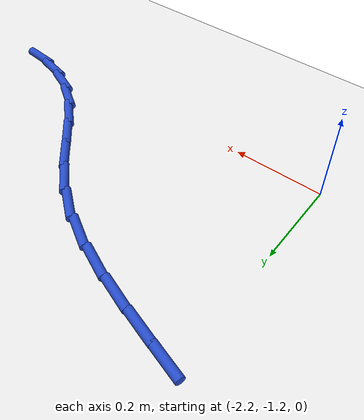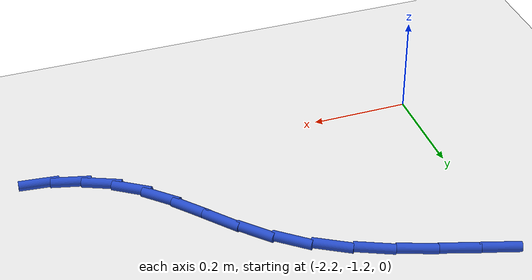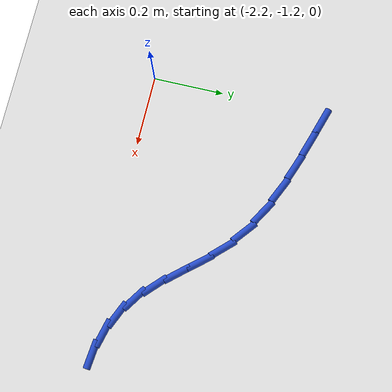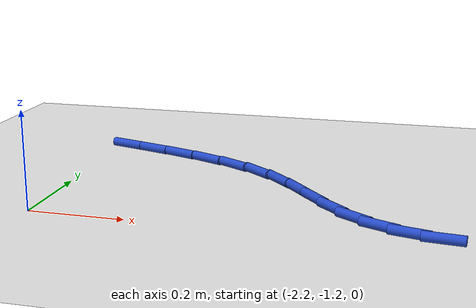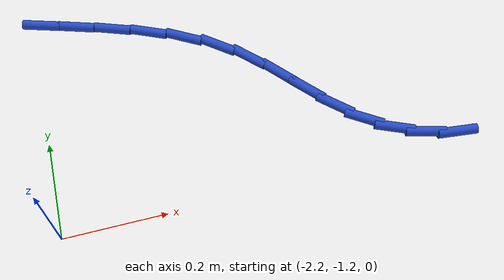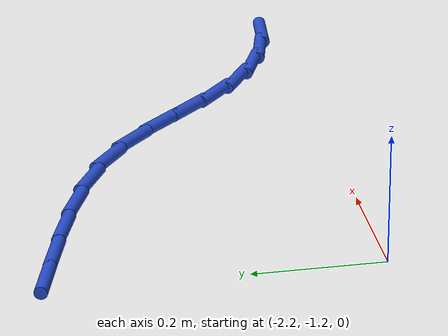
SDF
<sdf version="1.6">
 <world name="default">
  <model name="ground_plane">
   <static>1</static>
   <link name="link">
    <collision name="collision">
     <geometry><plane><normal>0 0 1</normal><size>100 100</size></plane></geometry>
     <surface><friction><ode><mu>100</mu><mu2>50</mu2></ode></friction></surface>
    </collision>
    <visual name="visual">
     <cast_shadows>0</cast_shadows>
     <geometry><plane><normal>0 0 1</normal><size>100 100</size></plane></geometry>
     <material>
      <script><uri>file://media/materials/scripts/gazebo.material</uri><name>Gazebo/WhiteGlow</name></script>
     </material>
    </visual>
   </link>
  </model>
  <model name="line">
   <link name="link_69">
    <pose>-2.179957475120213 -0.7105282454175981 0.01 0 1.57 -0.29930819599066694</pose>
    <collision name="collision">
     <geometry><cylinder><radius>0.01</radius><length>0.08</length></cylinder></geometry>
    </collision>
    <visual name="visual">
     <material>
      <script><name>Gazebo/Blue</name><uri>file://media/materials/scripts/gazebo.material</uri></script>
     </material>
     <geometry><cylinder><radius>0.01</radius><length>0.08</length></cylinder></geometry>
    </visual>
   </link>
   <link name="link_70">
    <pose>-2.107617988413143 -0.7328506491828713 0.01 0 1.57 -0.31119644504675537</pose>
    <collision name="collision">
     <geometry><cylinder><radius>0.01</radius><length>0.08</length></cylinder></geometry>
    </collision>
    <visual name="visual">
     <material>
      <script><name>Gazebo/Blue</name><uri>file://media/materials/scripts/gazebo.material</uri></script>
     </material>
     <geometry><cylinder><radius>0.01</radius><length>0.08</length></cylinder></geometry>
    </visual>
   </link>
   <link name="link_71">
    <pose>-2.033045088993491 -0.7568368152237275 0.01 0 1.57 -0.35165283028354094</pose>
    <collision name="collision">
     <geometry><cylinder><radius>0.01</radius><length>0.08</length></cylinder></geometry>
    </collision>
    <visual name="visual">
     <material>
      <script><name>Gazebo/Blue</name><uri>file://media/materials/scripts/gazebo.material</uri></script>
     </material>
     <geometry><cylinder><radius>0.01</radius><length>0.08</length></cylinder></geometry>
    </visual>
   </link>
   <link name="link_72">
    <pose>-1.958905544423885 -0.7840388135821549 0.01 0 1.57 -0.4228792199599753</pose>
    <collision name="collision">
     <geometry><cylinder><radius>0.01</radius><length>0.08</length></cylinder></geometry>
    </collision>
    <visual name="visual">
     <material>
      <script><name>Gazebo/Blue</name><uri>file://media/materials/scripts/gazebo.material</uri></script>
     </material>
     <geometry><cylinder><radius>0.01</radius><length>0.08</length></cylinder></geometry>
    </visual>
   </link>
   <link name="link_73">
    <pose>-1.8878661222669602 -0.8160087143001408 0.01 0 1.57 -0.5305197525894494</pose>
    <collision name="collision">
     <geometry><cylinder><radius>0.01</radius><length>0.08</length></cylinder></geometry>
    </collision>
    <visual name="visual">
     <material>
      <script><name>Gazebo/Blue</name><uri>file://media/materials/scripts/gazebo.material</uri></script>
     </material>
     <geometry><cylinder><radius>0.01</radius><length>0.08</length></cylinder></geometry>
    </visual>
   </link>
   <link name="link_74">
    <pose>-1.8225935900853476 -0.8542985874196733 0.01 0 1.57 -0.6772283078715434</pose>
    <collision name="collision">
     <geometry><cylinder><radius>0.01</radius><length>0.08</length></cylinder></geometry>
    </collision>
    <visual name="visual">
     <material>
      <script><name>Gazebo/Blue</name><uri>file://media/materials/scripts/gazebo.material</uri></script>
     </material>
     <geometry><cylinder><radius>0.01</radius><length>0.08</length></cylinder></geometry>
    </visual>
   </link>
   <link name="link_75">
    <pose>-1.7654963230384526 -0.9002097816610752 0.01 0 1.57 -0.803649046675729</pose>
    <collision name="collision">
     <geometry><cylinder><radius>0.01</radius><length>0.08</length></cylinder></geometry>
    </collision>
    <visual name="visual">
     <material>
      <script><name>Gazebo/Blue</name><uri>file://media/materials/scripts/gazebo.material</uri></script>
     </material>
     <geometry><cylinder><radius>0.01</radius><length>0.08</length></cylinder></geometry>
    </visual>
   </link>
   <link name="link_76">
    <pose>-1.7156996777777 -0.9518580925740537 0.01 0 1.57 -0.8628692839199564</pose>
    <collision name="collision">
     <geometry><cylinder><radius>0.01</radius><length>0.08</length></cylinder></geometry>
    </collision>
    <visual name="visual">
     <material>
      <script><name>Gazebo/Blue</name><uri>file://media/materials/scripts/gazebo.material</uri></script>
     </material>
     <geometry><cylinder><radius>0.01</radius><length>0.08</length></cylinder></geometry>
    </visual>
   </link>
   <link name="link_77">
    <pose>-1.6700703465784228 -1.00516770592995 0.01 0 1.57 -0.8503604693833745</pose>
    <collision name="collision">
     <geometry><cylinder><radius>0.01</radius><length>0.08</length></cylinder></geometry>
    </collision>
    <visual name="visual">
     <material>
      <script><name>Gazebo/Blue</name><uri>file://media/materials/scripts/gazebo.material</uri></script>
     </material>
     <geometry><cylinder><radius>0.01</radius><length>0.08</length></cylinder></geometry>
    </visual>
   </link>
   <link name="link_78">
    <pose>-1.6254305254384167 -1.0560196322156452 0.01 0 1.57 -0.7573838576588622</pose>
    <collision name="collision">
     <geometry><cylinder><radius>0.01</radius><length>0.08</length></cylinder></geometry>
    </collision>
    <visual name="visual">
     <material>
      <script><name>Gazebo/Blue</name><uri>file://media/materials/scripts/gazebo.material</uri></script>
     </material>
     <geometry><cylinder><radius>0.01</radius><length>0.08</length></cylinder></geometry>
    </visual>
   </link>
   <link name="link_79">
    <pose>-1.5786024103554797 -1.1002948819180172 0.01 0 1.57 -0.5878582204333563</pose>
    <collision name="collision">
     <geometry><cylinder><radius>0.01</radius><length>0.08</length></cylinder></geometry>
    </collision>
    <visual name="visual">
     <material>
      <script><name>Gazebo/Blue</name><uri>file://media/materials/scripts/gazebo.material</uri></script>
     </material>
     <geometry><cylinder><radius>0.01</radius><length>0.08</length></cylinder></geometry>
    </visual>
   </link>
   <link name="link_80">
    <pose>-1.5270244615455515 -1.1346694254039287 0.01 0 1.57 -0.4080945876037212</pose>
    <collision name="collision">
     <geometry><cylinder><radius>0.01</radius><length>0.08</length></cylinder></geometry>
    </collision>
    <visual name="visual">
     <material>
      <script><name>Gazebo/Blue</name><uri>file://media/materials/scripts/gazebo.material</uri></script>
     </material>
     <geometry><cylinder><radius>0.01</radius><length>0.08</length></cylinder></geometry>
    </visual>
   </link>
   <link name="link_81">
    <pose>-1.4706387391739928 -1.1590487918183023 0.01 0 1.57 -0.2442921662410073</pose>
    <collision name="collision">
     <geometry><cylinder><radius>0.01</radius><length>0.08</length></cylinder></geometry>
    </collision>
    <visual name="visual">
     <material>
      <script><name>Gazebo/Blue</name><uri>file://media/materials/scripts/gazebo.material</uri></script>
     </material>
     <geometry><cylinder><radius>0.01</radius><length>0.08</length></cylinder></geometry>
    </visual>
   </link>
   <link name="link_82">
    <pose>-1.4100229893476206 -1.1741585235485166 0.01 0 1.57 -0.10180707514304979</pose>
    <collision name="collision">
     <geometry><cylinder><radius>0.01</radius><length>0.08</length></cylinder></geometry>
    </collision>
    <visual name="visual">
     <material>
      <script><name>Gazebo/Blue</name><uri>file://media/materials/scripts/gazebo.material</uri></script>
     </material>
     <geometry><cylinder><radius>0.01</radius><length>0.08</length></cylinder></geometry>
    </visual>
   </link>
  </model>
 </world>
</sdf>
